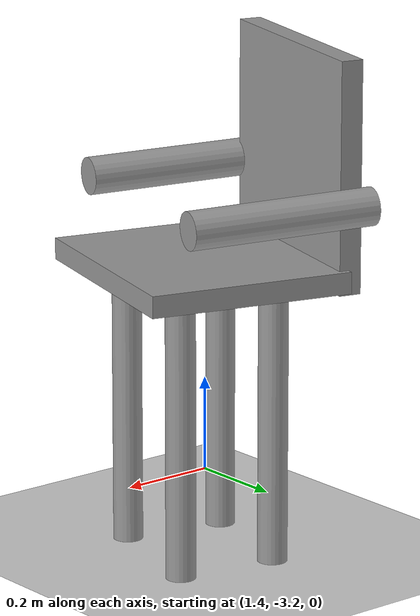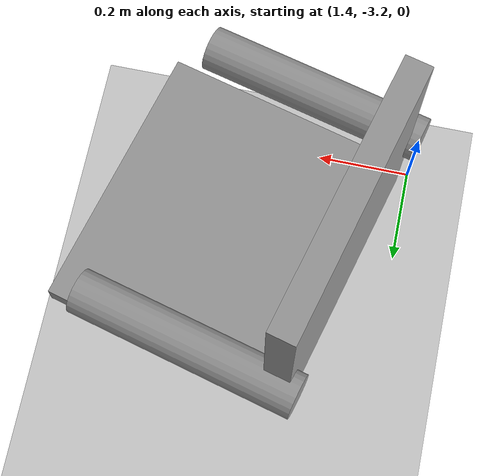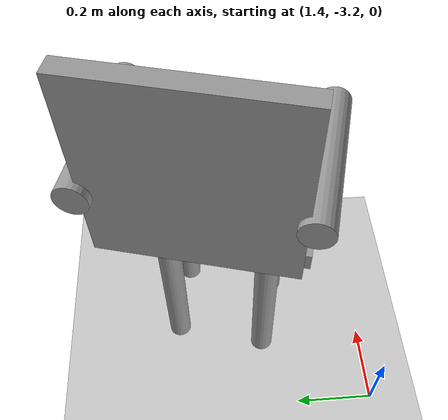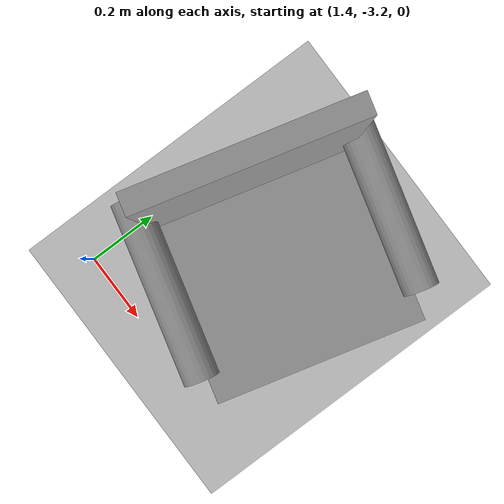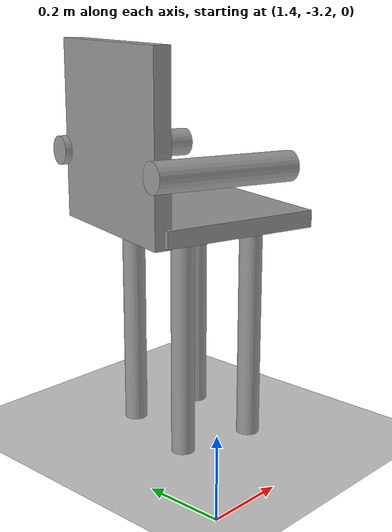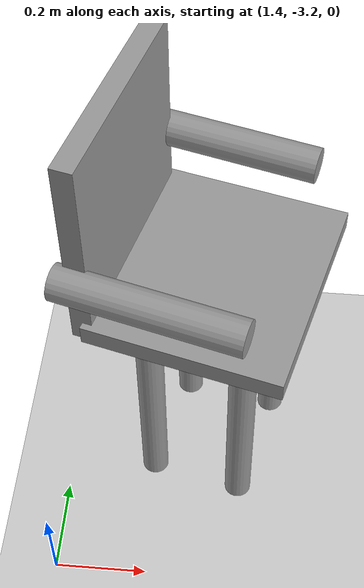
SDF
<sdf version="1.6">
 <world name="default">
  <model name="ground_plane">
   <static>1</static>
   <link name="link">
    <collision name="collision">
     <geometry><plane><normal>0 0 1</normal><size>100 100</size></plane></geometry>
     <surface>
      <contact><collide_bitmask>65535</collide_bitmask></contact>
      <friction><ode><mu>100</mu><mu2>50</mu2></ode></friction>
     </surface>
    </collision>
    <visual name="visual">
     <cast_shadows>0</cast_shadows>
     <geometry><plane><normal>0 0 1</normal><size>100 100</size></plane></geometry>
     <material>
      <script><uri>file://media/materials/scripts/gazebo.material</uri><name>Gazebo/Grey</name></script>
     </material>
    </visual>
   </link>
  </model>
  <model name="chair_clone_0_clone_1">
   <link name="link_4">
    <inertial>
     <mass>0.00194051</mass>
     <inertia>
      <ixx>5.14044e-05</ixx>
      <ixy>0</ixy>
      <ixz>0</ixz>
      <iyy>5.14044e-05</iyy>
      <iyz>0</iyz>
      <izz>8.34973e-07</izz>
     </inertia>
    </inertial>
    <pose>-0.140129 -0.127166 -0.209129 0 -0 0</pose>
    <visual name="visual">
     <geometry><cylinder><radius>0.0293355</radius><length>0.561516</length></cylinder></geometry>
     <material>
      <lighting>1</lighting>
      <script><uri>file://media/materials/scripts/gazebo.material</uri><name>Gazebo/Grey</name></script>
      <emissive>0 0 0 1</emissive>
     </material>
    </visual>
    <collision name="collision">
     <geometry><cylinder><radius>0.029336</radius><length>0.561516</length></cylinder></geometry>
     <surface>
      <friction>
       <ode><mu>1</mu><mu2>1</mu2><fdir1>0 0 0</fdir1><slip1>0</slip1><slip2>0</slip2></ode>
       <torsional>
        <coefficient>1</coefficient>
        <patch_radius>0</patch_radius>
        <surface_radius>0</surface_radius>
        <use_patch_radius>1</use_patch_radius>
        <ode><slip>0</slip></ode>
       </torsional>
      </friction>
      <bounce><restitution_coefficient>0</restitution_coefficient><threshold>1e+06</threshold></bounce>
      <contact>
       <collide_without_contact>0</collide_without_contact>
       <collide_without_contact_bitmask>1</collide_without_contact_bitmask>
       <collide_bitmask>1</collide_bitmask>
       <ode>
        <soft_cfm>0</soft_cfm>
        <soft_erp>0.2</soft_erp>
        <kp>1e+13</kp>
        <kd>1</kd>
        <max_vel>0.01</max_vel>
        <min_depth>0</min_depth>
       </ode>
       <bullet>
        <split_impulse>1</split_impulse>
        <split_impulse_penetration_threshold>-0.01</split_impulse_penetration_threshold>
        <soft_cfm>0</soft_cfm>
        <soft_erp>0.2</soft_erp>
        <kp>1e+13</kp>
        <kd>1</kd>
       </bullet>
      </contact>
     </surface>
    </collision>
   </link>
   <link name="link_4_clone">
    <inertial>
     <mass>0.00194051</mass>
     <inertia>
      <ixx>5.14044e-05</ixx>
      <ixy>0</ixy>
      <ixz>0</ixz>
      <iyy>5.14044e-05</iyy>
      <iyz>0</iyz>
      <izz>8.34973e-07</izz>
     </inertia>
    </inertial>
    <pose>-0.139565 0.126187 -0.209129 0 -0 0</pose>
    <visual name="visual">
     <geometry><cylinder><radius>0.0293355</radius><length>0.561516</length></cylinder></geometry>
     <material>
      <lighting>1</lighting>
      <script><uri>file://media/materials/scripts/gazebo.material</uri><name>Gazebo/Grey</name></script>
      <shader type="pixel"/>
      <emissive>0 0 0 1</emissive>
     </material>
    </visual>
    <collision name="collision">
     <geometry><cylinder><radius>0.029336</radius><length>0.561516</length></cylinder></geometry>
     <surface>
      <friction>
       <ode><mu>1</mu><mu2>1</mu2><fdir1>0 0 0</fdir1><slip1>0</slip1><slip2>0</slip2></ode>
       <torsional>
        <coefficient>1</coefficient>
        <patch_radius>0</patch_radius>
        <surface_radius>0</surface_radius>
        <use_patch_radius>1</use_patch_radius>
        <ode><slip>0</slip></ode>
       </torsional>
      </friction>
      <bounce><restitution_coefficient>0</restitution_coefficient><threshold>1e+06</threshold></bounce>
      <contact>
       <collide_without_contact>0</collide_without_contact>
       <collide_without_contact_bitmask>1</collide_without_contact_bitmask>
       <collide_bitmask>1</collide_bitmask>
       <ode>
        <soft_cfm>0</soft_cfm>
        <soft_erp>0.2</soft_erp>
        <kp>1e+13</kp>
        <kd>1</kd>
        <max_vel>0.01</max_vel>
        <min_depth>0</min_depth>
       </ode>
       <bullet>
        <split_impulse>1</split_impulse>
        <split_impulse_penetration_threshold>-0.01</split_impulse_penetration_threshold>
        <soft_cfm>0</soft_cfm>
        <soft_erp>0.2</soft_erp>
        <kp>1e+13</kp>
        <kd>1</kd>
       </bullet>
      </contact>
     </surface>
    </collision>
   </link>
   <link name="link_4_clone_0">
    <inertial>
     <mass>0.00194051</mass>
     <inertia>
      <ixx>5.14044e-05</ixx>
      <ixy>0</ixy>
      <ixz>0</ixz>
      <iyy>5.14044e-05</iyy>
      <iyz>0</iyz>
      <izz>8.34973e-07</izz>
     </inertia>
    </inertial>
    <pose>0.062929 0.13105 -0.209129 0 -0 0</pose>
    <visual name="visual">
     <geometry><cylinder><radius>0.0293355</radius><length>0.561516</length></cylinder></geometry>
     <material>
      <lighting>1</lighting>
      <script><uri>file://media/materials/scripts/gazebo.material</uri><name>Gazebo/Grey</name></script>
      <shader type="pixel"/>
      <emissive>0 0 0 1</emissive>
     </material>
    </visual>
    <collision name="collision">
     <geometry><cylinder><radius>0.029336</radius><length>0.561516</length></cylinder></geometry>
     <surface>
      <friction>
       <ode><mu>1</mu><mu2>1</mu2><fdir1>0 0 0</fdir1><slip1>0</slip1><slip2>0</slip2></ode>
       <torsional>
        <coefficient>1</coefficient>
        <patch_radius>0</patch_radius>
        <surface_radius>0</surface_radius>
        <use_patch_radius>1</use_patch_radius>
        <ode><slip>0</slip></ode>
       </torsional>
      </friction>
      <bounce><restitution_coefficient>0</restitution_coefficient><threshold>1e+06</threshold></bounce>
      <contact>
       <collide_without_contact>0</collide_without_contact>
       <collide_without_contact_bitmask>1</collide_without_contact_bitmask>
       <collide_bitmask>1</collide_bitmask>
       <ode>
        <soft_cfm>0</soft_cfm>
        <soft_erp>0.2</soft_erp>
        <kp>1e+13</kp>
        <kd>1</kd>
        <max_vel>0.01</max_vel>
        <min_depth>0</min_depth>
       </ode>
       <bullet>
        <split_impulse>1</split_impulse>
        <split_impulse_penetration_threshold>-0.01</split_impulse_penetration_threshold>
        <soft_cfm>0</soft_cfm>
        <soft_erp>0.2</soft_erp>
        <kp>1e+13</kp>
        <kd>1</kd>
       </bullet>
      </contact>
     </surface>
    </collision>
   </link>
   <link name="link_4_clone_1">
    <inertial>
     <mass>0.00194051</mass>
     <inertia>
      <ixx>5.14044e-05</ixx>
      <ixy>0</ixy>
      <ixz>0</ixz>
      <iyy>5.14044e-05</iyy>
      <iyz>0</iyz>
      <izz>8.34973e-07</izz>
     </inertia>
    </inertial>
    <pose>0.061641 -0.111934 -0.209129 0 -0 0</pose>
    <visual name="visual">
     <geometry><cylinder><radius>0.0293355</radius><length>0.561516</length></cylinder></geometry>
     <material>
      <lighting>1</lighting>
      <script><uri>file://media/materials/scripts/gazebo.material</uri><name>Gazebo/Grey</name></script>
      <shader type="pixel"/>
      <emissive>0 0 0 1</emissive>
     </material>
    </visual>
    <collision name="collision">
     <geometry><cylinder><radius>0.029336</radius><length>0.561516</length></cylinder></geometry>
     <surface>
      <friction>
       <ode><mu>1</mu><mu2>1</mu2><fdir1>0 0 0</fdir1><slip1>0</slip1><slip2>0</slip2></ode>
       <torsional>
        <coefficient>1</coefficient>
        <patch_radius>0</patch_radius>
        <surface_radius>0</surface_radius>
        <use_patch_radius>1</use_patch_radius>
        <ode><slip>0</slip></ode>
       </torsional>
      </friction>
      <bounce><restitution_coefficient>0</restitution_coefficient><threshold>1e+06</threshold></bounce>
      <contact>
       <collide_without_contact>0</collide_without_contact>
       <collide_without_contact_bitmask>1</collide_without_contact_bitmask>
       <collide_bitmask>1</collide_bitmask>
       <ode>
        <soft_cfm>0</soft_cfm>
        <soft_erp>0.2</soft_erp>
        <kp>1e+13</kp>
        <kd>1</kd>
        <max_vel>0.01</max_vel>
        <min_depth>0</min_depth>
       </ode>
       <bullet>
        <split_impulse>1</split_impulse>
        <split_impulse_penetration_threshold>-0.01</split_impulse_penetration_threshold>
        <soft_cfm>0</soft_cfm>
        <soft_erp>0.2</soft_erp>
        <kp>1e+13</kp>
        <kd>1</kd>
       </bullet>
      </contact>
     </surface>
    </collision>
   </link>
   <link name="link_5">
    <inertial>
     <mass>0.00816884</mass>
     <inertia>
      <ixx>0.00015002</ixx>
      <ixy>0</ixy>
      <ixz>0</ixz>
      <iyy>0.000115328</iyy>
      <iyz>0</iyz>
      <izz>0.000262862</izz>
     </inertia>
    </inertial>
    <pose>-0.041662 -0.005028 0.089077 0 -0 0</pose>
    <visual name="visual">
     <geometry><box><size>0.409378 0.467496 0.042729</size></box></geometry>
     <material>
      <lighting>1</lighting>
      <script><uri>file://media/materials/scripts/gazebo.material</uri><name>Gazebo/Grey</name></script>
      <emissive>0 0 0 1</emissive>
     </material>
    </visual>
    <collision name="collision">
     <geometry><box><size>0.409378 0.467496 0.042729</size></box></geometry>
     <surface>
      <friction>
       <ode><mu>1</mu><mu2>1</mu2><fdir1>0 0 0</fdir1><slip1>0</slip1><slip2>0</slip2></ode>
       <torsional>
        <coefficient>1</coefficient>
        <patch_radius>0</patch_radius>
        <surface_radius>0</surface_radius>
        <use_patch_radius>1</use_patch_radius>
        <ode><slip>0</slip></ode>
       </torsional>
      </friction>
      <bounce><restitution_coefficient>0</restitution_coefficient><threshold>1e+06</threshold></bounce>
      <contact>
       <collide_without_contact>0</collide_without_contact>
       <collide_without_contact_bitmask>1</collide_without_contact_bitmask>
       <collide_bitmask>1</collide_bitmask>
       <ode>
        <soft_cfm>0</soft_cfm>
        <soft_erp>0.2</soft_erp>
        <kp>1e+13</kp>
        <kd>1</kd>
        <max_vel>0.01</max_vel>
        <min_depth>0</min_depth>
       </ode>
       <bullet>
        <split_impulse>1</split_impulse>
        <split_impulse_penetration_threshold>-0.01</split_impulse_penetration_threshold>
        <soft_cfm>0</soft_cfm>
        <soft_erp>0.2</soft_erp>
        <kp>1e+13</kp>
        <kd>1</kd>
       </bullet>
      </contact>
     </surface>
    </collision>
   </link>
   <link name="link_6">
    <inertial>
     <mass>0.00855687</mass>
     <inertia>
      <ixx>0.000285159</ixx>
      <ixy>0</ixy>
      <ixz>0</ixz>
      <iyy>0.000146983</iyy>
      <iyz>0</iyz>
      <izz>0.000140925</izz>
     </inertia>
    </inertial>
    <pose>0.165697 -0.006458 0.287866 0 -0 0</pose>
    <visual name="visual">
     <geometry><box><size>0.0439 0.442383 0.451884</size></box></geometry>
     <material>
      <lighting>1</lighting>
      <script><uri>file://media/materials/scripts/gazebo.material</uri><name>Gazebo/Grey</name></script>
      <emissive>0 0 0 1</emissive>
     </material>
    </visual>
    <collision name="collision">
     <geometry><box><size>0.0439 0.442383 0.451884</size></box></geometry>
     <surface>
      <friction>
       <ode><mu>1</mu><mu2>1</mu2><fdir1>0 0 0</fdir1><slip1>0</slip1><slip2>0</slip2></ode>
       <torsional>
        <coefficient>1</coefficient>
        <patch_radius>0</patch_radius>
        <surface_radius>0</surface_radius>
        <use_patch_radius>1</use_patch_radius>
        <ode><slip>0</slip></ode>
       </torsional>
      </friction>
      <bounce><restitution_coefficient>0</restitution_coefficient><threshold>1e+06</threshold></bounce>
      <contact>
       <collide_without_contact>0</collide_without_contact>
       <collide_without_contact_bitmask>1</collide_without_contact_bitmask>
       <collide_bitmask>1</collide_bitmask>
       <ode>
        <soft_cfm>0</soft_cfm>
        <soft_erp>0.2</soft_erp>
        <kp>1e+13</kp>
        <kd>1</kd>
        <max_vel>0.01</max_vel>
        <min_depth>0</min_depth>
       </ode>
       <bullet>
        <split_impulse>1</split_impulse>
        <split_impulse_penetration_threshold>-0.01</split_impulse_penetration_threshold>
        <soft_cfm>0</soft_cfm>
        <soft_erp>0.2</soft_erp>
        <kp>1e+13</kp>
        <kd>1</kd>
       </bullet>
      </contact>
     </surface>
    </collision>
   </link>
   <link name="link_7">
    <inertial>
     <mass>0.00209129</mass>
     <inertia>
      <ixx>2.57536e-05</ixx>
      <ixy>0</ixy>
      <ixz>0</ixz>
      <iyy>2.57536e-05</iyy>
      <iyz>0</iyz>
      <izz>1.44551e-06</izz>
     </inertia>
    </inertial>
    <pose>0.0147 0.228665 0.230372 0 1.55081 0</pose>
    <visual name="visual">
     <geometry><cylinder><radius>0.0371808</radius><length>0.378984</length></cylinder></geometry>
     <material>
      <lighting>1</lighting>
      <script><uri>file://media/materials/scripts/gazebo.material</uri><name>Gazebo/Grey</name></script>
      <emissive>0 0 0 1</emissive>
     </material>
    </visual>
    <collision name="collision">
     <geometry><cylinder><radius>0.037181</radius><length>0.378984</length></cylinder></geometry>
     <surface>
      <friction>
       <ode><mu>1</mu><mu2>1</mu2><fdir1>0 0 0</fdir1><slip1>0</slip1><slip2>0</slip2></ode>
       <torsional>
        <coefficient>1</coefficient>
        <patch_radius>0</patch_radius>
        <surface_radius>0</surface_radius>
        <use_patch_radius>1</use_patch_radius>
        <ode><slip>0</slip></ode>
       </torsional>
      </friction>
      <bounce><restitution_coefficient>0</restitution_coefficient><threshold>1e+06</threshold></bounce>
      <contact>
       <collide_without_contact>0</collide_without_contact>
       <collide_without_contact_bitmask>1</collide_without_contact_bitmask>
       <collide_bitmask>1</collide_bitmask>
       <ode>
        <soft_cfm>0</soft_cfm>
        <soft_erp>0.2</soft_erp>
        <kp>1e+13</kp>
        <kd>1</kd>
        <max_vel>0.01</max_vel>
        <min_depth>0</min_depth>
       </ode>
       <bullet>
        <split_impulse>1</split_impulse>
        <split_impulse_penetration_threshold>-0.01</split_impulse_penetration_threshold>
        <soft_cfm>0</soft_cfm>
        <soft_erp>0.2</soft_erp>
        <kp>1e+13</kp>
        <kd>1</kd>
       </bullet>
      </contact>
     </surface>
    </collision>
   </link>
   <link name="link_7_clone">
    <inertial>
     <mass>0.00209129</mass>
     <inertia>
      <ixx>2.57536e-05</ixx>
      <ixy>0</ixy>
      <ixz>0</ixz>
      <iyy>2.57536e-05</iyy>
      <iyz>0</iyz>
      <izz>1.44551e-06</izz>
     </inertia>
    </inertial>
    <pose>0.01639 -0.235319 0.229201 0 1.55081 0</pose>
    <visual name="visual">
     <geometry><cylinder><radius>0.0371808</radius><length>0.378984</length></cylinder></geometry>
     <material>
      <lighting>1</lighting>
      <script><uri>file://media/materials/scripts/gazebo.material</uri><name>Gazebo/Grey</name></script>
      <shader type="pixel"/>
      <emissive>0 0 0 1</emissive>
     </material>
    </visual>
    <collision name="collision">
     <geometry><cylinder><radius>0.037181</radius><length>0.378984</length></cylinder></geometry>
     <surface>
      <friction>
       <ode><mu>1</mu><mu2>1</mu2><fdir1>0 0 0</fdir1><slip1>0</slip1><slip2>0</slip2></ode>
       <torsional>
        <coefficient>1</coefficient>
        <patch_radius>0</patch_radius>
        <surface_radius>0</surface_radius>
        <use_patch_radius>1</use_patch_radius>
        <ode><slip>0</slip></ode>
       </torsional>
      </friction>
      <bounce><restitution_coefficient>0</restitution_coefficient><threshold>1e+06</threshold></bounce>
      <contact>
       <collide_without_contact>0</collide_without_contact>
       <collide_without_contact_bitmask>1</collide_without_contact_bitmask>
       <collide_bitmask>1</collide_bitmask>
       <ode>
        <soft_cfm>0</soft_cfm>
        <soft_erp>0.2</soft_erp>
        <kp>1e+13</kp>
        <kd>1</kd>
        <max_vel>0.01</max_vel>
        <min_depth>0</min_depth>
       </ode>
       <bullet>
        <split_impulse>1</split_impulse>
        <split_impulse_penetration_threshold>-0.01</split_impulse_penetration_threshold>
        <soft_cfm>0</soft_cfm>
        <soft_erp>0.2</soft_erp>
        <kp>1e+13</kp>
        <kd>1</kd>
       </bullet>
      </contact>
     </surface>
    </collision>
   </link>
   <joint name="link_5_JOINT_2" type="fixed">
    <parent>link_5</parent>
    <child>link_4_clone_1</child>
    <physics>
     <ode><limit><cfm>0</cfm><erp>0.2</erp></limit><suspension><cfm>0</cfm><erp>0.2</erp></suspension></ode>
    </physics>
   </joint>
   <joint name="link_5_JOINT_3" type="fixed">
    <parent>link_5</parent>
    <child>link_4</child>
    <physics>
     <ode><limit><cfm>0</cfm><erp>0.2</erp></limit><suspension><cfm>0</cfm><erp>0.2</erp></suspension></ode>
    </physics>
   </joint>
   <joint name="link_5_JOINT_4" type="fixed">
    <parent>link_5</parent>
    <child>link_4_clone_0</child>
    <physics>
     <ode><limit><cfm>0</cfm><erp>0.2</erp></limit><suspension><cfm>0</cfm><erp>0.2</erp></suspension></ode>
    </physics>
   </joint>
   <joint name="link_5_JOINT_5" type="fixed">
    <parent>link_5</parent>
    <child>link_4_clone</child>
    <physics>
     <ode><limit><cfm>0</cfm><erp>0.2</erp></limit><suspension><cfm>0</cfm><erp>0.2</erp></suspension></ode>
    </physics>
   </joint>
   <joint name="link_5_JOINT_6" type="fixed">
    <parent>link_5</parent>
    <child>link_6</child>
    <physics>
     <ode><limit><cfm>0</cfm><erp>0.2</erp></limit><suspension><cfm>0</cfm><erp>0.2</erp></suspension></ode>
    </physics>
   </joint>
   <joint name="link_5_JOINT_7" type="fixed">
    <parent>link_5</parent>
    <child>link_7</child>
    <physics>
     <ode><limit><cfm>0</cfm><erp>0.2</erp></limit><suspension><cfm>0</cfm><erp>0.2</erp></suspension></ode>
    </physics>
   </joint>
   <joint name="link_5_JOINT_8" type="fixed">
    <parent>link_5</parent>
    <child>link_7_clone</child>
    <physics>
     <ode><limit><cfm>0</cfm><erp>0.2</erp></limit><suspension><cfm>0</cfm><erp>0.2</erp></suspension></ode>
    </physics>
   </joint>
   <static>0</static>
   <pose>1.68731 -2.80647 0.489878 0 3.1e-05 2.88487</pose>
  </model>
 </world>
</sdf>
